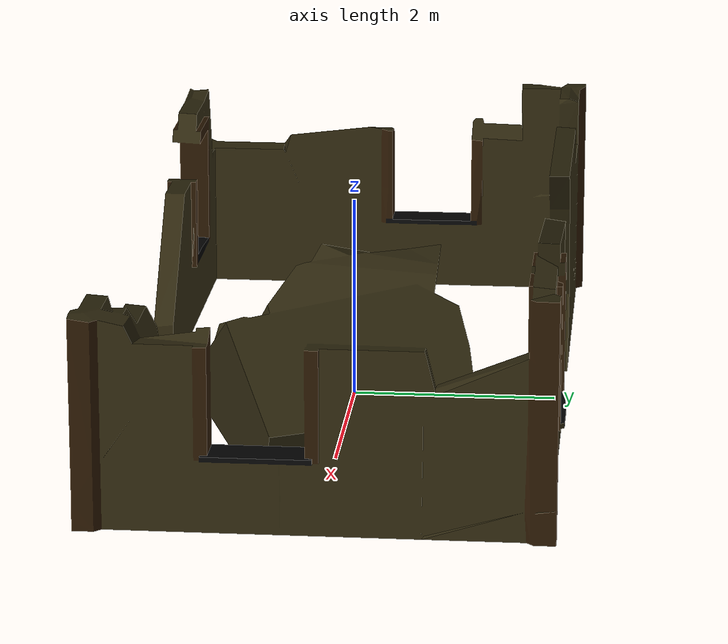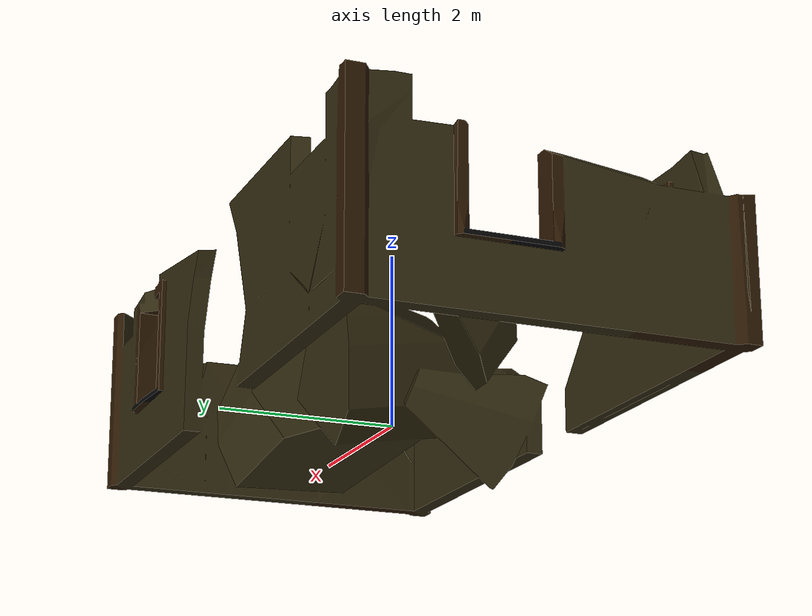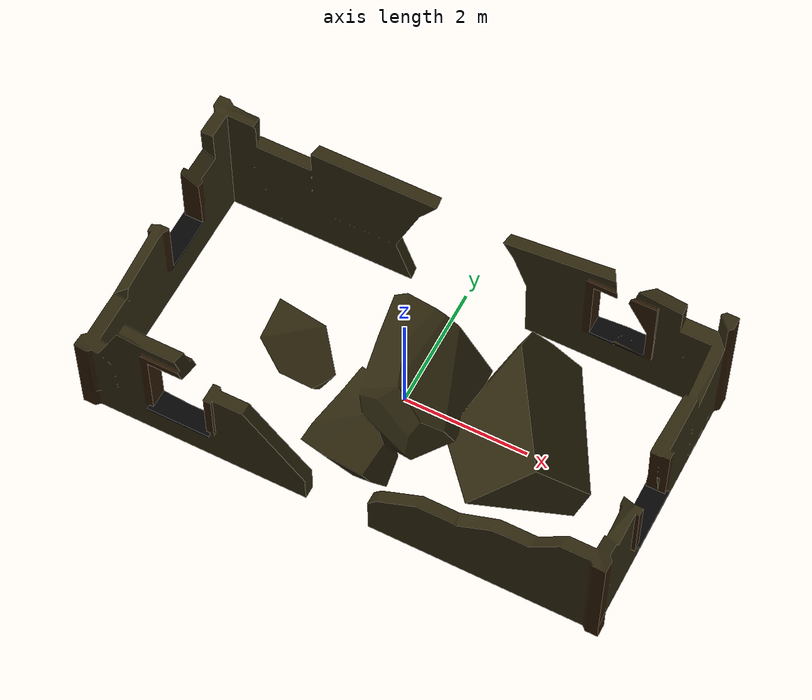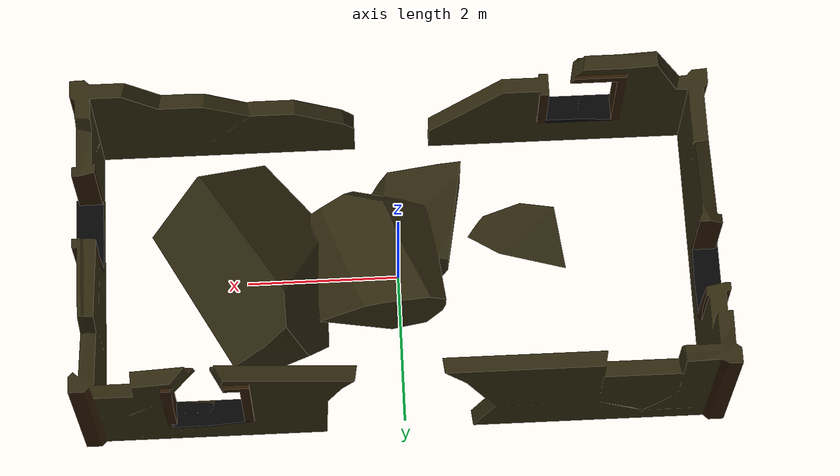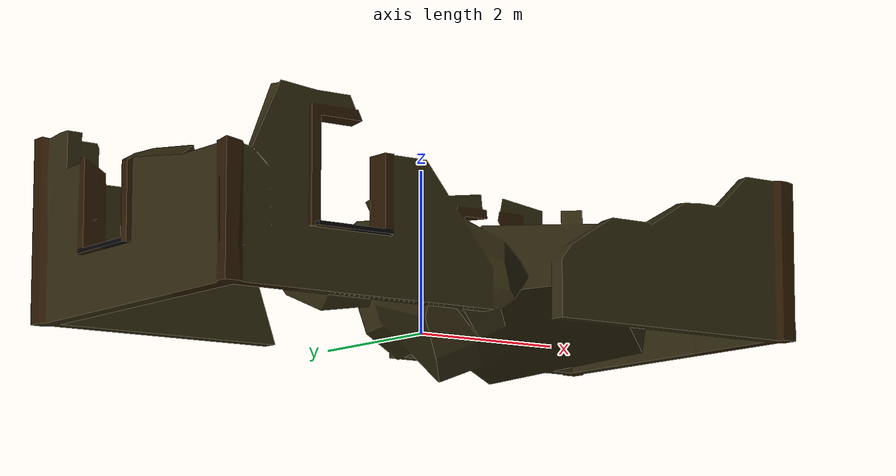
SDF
<?xml version="1.0" ?>

<sdf version="1.4">
  <model name="iai_cabin_broken">
    <static>true</static>
    <link name="iai_cabin_broken">
      <collision name="collision">
	<geometry>
            <mesh>
	      <uri>model://cabin_broken/cabin_broken.dae</uri>
	    </mesh>
          </geometry>
      </collision>
      <visual name="vis">
        <cast_shadows>false</cast_shadows>

	<geometry>
            <mesh>
	      <uri>model://cabin_broken/cabin_broken.dae</uri>
	    </mesh>
          </geometry>
      </visual>

    </link>
          <plugin name="scanable"
              filename="libiai_object_transmitter.so">
            <object_type>terrain</object_type><!-- this is used to determine -->
            <absolute_detection>true</absolute_detection>
            <attribute key="otype" value="cabin"/>
            <attribute key="manmade" value="true"/>
            <attribute key="navigation" value="inner"/>
      </plugin>
  </model>
</sdf>
